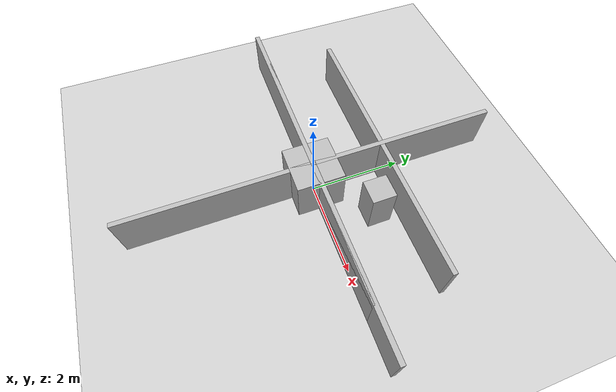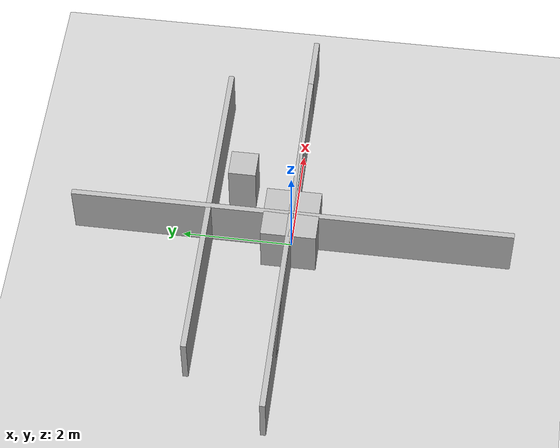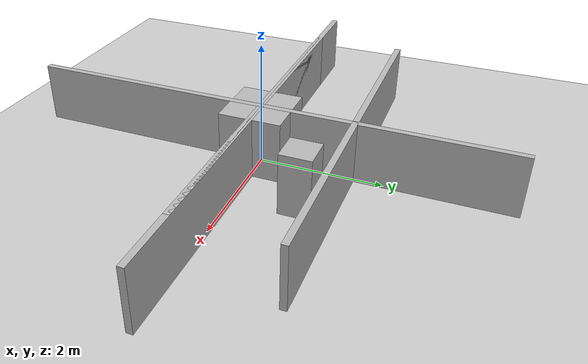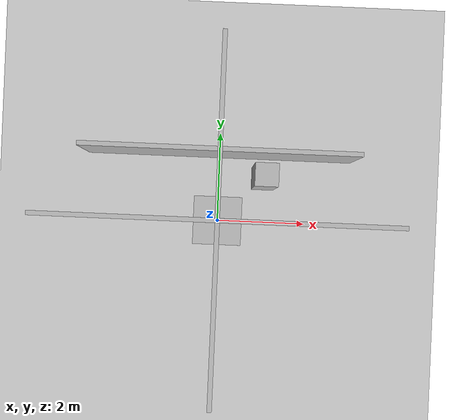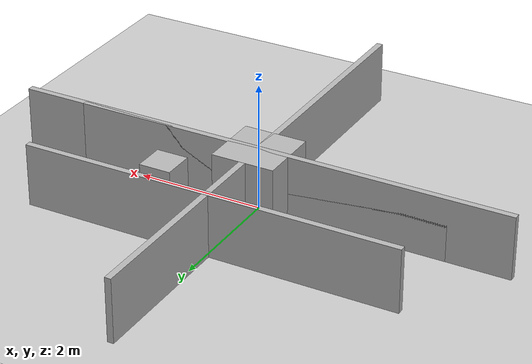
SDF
<?xml version="1.0" ?>
<sdf version="1.6">

  <world name="default">

    <!-- Ground -->
    <include>
      <uri>model://ground_plane</uri>
    </include>

    <!-- Light -->
    <include>
      <uri>model://sun</uri>
    </include>

    <!-- ===== ROOM WALLS ===== -->

    <model name="wall1">
      <static>true</static>
      <pose>2 0 0.5 0 0 0</pose>
      <link name="link">
        <collision name="collision">
          <geometry><box><size>4 0.1 1</size></box></geometry>
        </collision>
        <visual name="visual">
          <geometry><box><size>4 0.1 1</size></box></geometry>
        </visual>
      </link>
    </model>

    <model name="wall2">
      <static>true</static>
      <pose>-2 0 0.5 0 0 0</pose>
      <link name="link">
        <collision name="collision">
          <geometry><box><size>4 0.1 1</size></box></geometry>
        </collision>
        <visual name="visual">
          <geometry><box><size>4 0.1 1</size></box></geometry>
        </visual>
      </link>
    </model>

    <model name="wall3">
      <static>true</static>
      <pose>0 2 0.5 0 0 1.57</pose>
      <link name="link">
        <collision name="collision">
          <geometry><box><size>4 0.1 1</size></box></geometry>
        </collision>
        <visual name="visual">
          <geometry><box><size>4 0.1 1</size></box></geometry>
        </visual>
      </link>
    </model>

    <model name="wall4">
      <static>true</static>
      <pose>0 -2 0.5 0 0 1.57</pose>
      <link name="link">
        <collision name="collision">
          <geometry><box><size>4 0.1 1</size></box></geometry>
        </collision>
        <visual name="visual">
          <geometry><box><size>4 0.1 1</size></box></geometry>
        </visual>
      </link>
    </model>

    <!-- ===== CORRIDOR WALLS ===== -->

    <model name="corridor1">
      <static>true</static>
      <pose>0 0 0.5 0 0 0</pose>
      <link name="link">
        <collision name="collision">
          <geometry>
            <box><size>6 0.1 1</size></box>
          </geometry>
        </collision>
        <visual name="visual">
          <geometry>
            <box><size>6 0.1 1</size></box>
          </geometry>
        </visual>
      </link>
    </model>

    <model name="corridor2">
      <static>true</static>
      <pose>0 1.5 0.5 0 0 0</pose>
      <link name="link">
        <collision name="collision">
          <geometry>
            <box><size>6 0.1 1</size></box>
          </geometry>
        </collision>
        <visual name="visual">
          <geometry>
            <box><size>6 0.1 1</size></box>
          </geometry>
        </visual>
      </link>
    </model>

    <!-- ===== OBSTACLES ===== -->

    <model name="box1">
      <static>true</static>
      <pose>0 0 0.5 0 0 0</pose>
      <link name="link">
        <collision name="collision">
          <geometry>
            <box><size>1 1 1</size></box>
          </geometry>
        </collision>
        <visual name="visual">
          <geometry>
            <box><size>1 1 1</size></box>
          </geometry>
        </visual>
      </link>
    </model>

    <model name="box2">
      <static>true</static>
      <pose>1 1 0.5 0 0 0</pose>
      <link name="link">
        <collision name="collision">
          <geometry>
            <box><size>0.5 0.5 1</size></box>
          </geometry>
        </collision>
        <visual name="visual">
          <geometry>
            <box><size>0.5 0.5 1</size></box>
          </geometry>
        </visual>
      </link>
    </model>

  </world>

</sdf>
